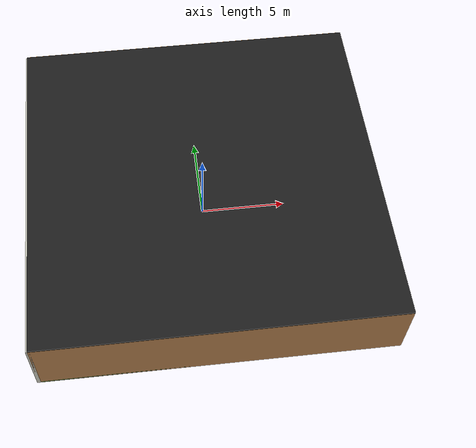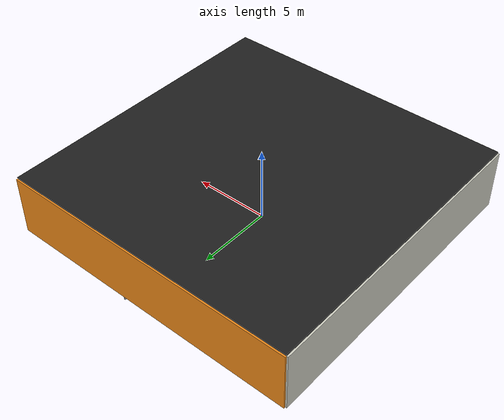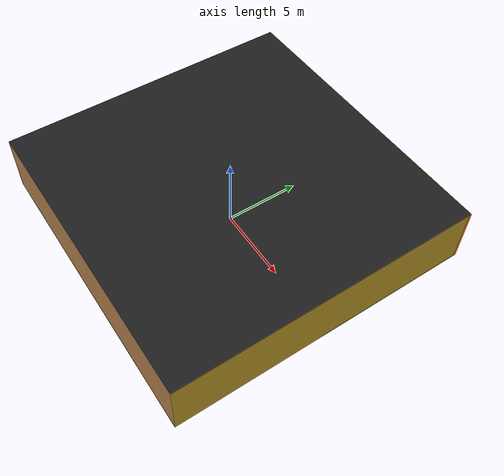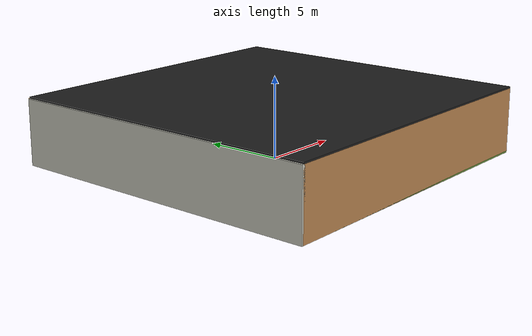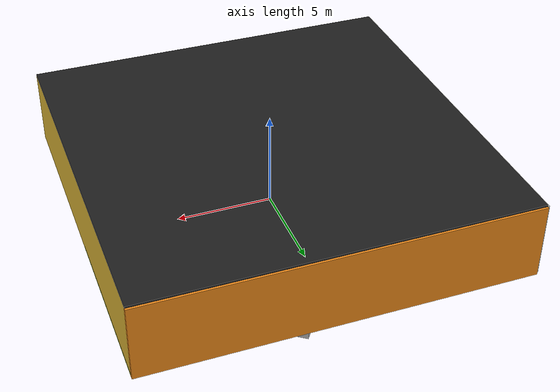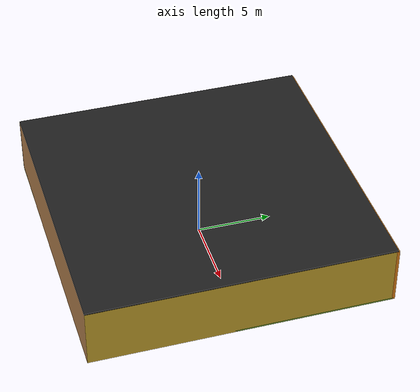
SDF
<sdf version="1.4">
 <world name="default">
  <physics type="ode">
   <max_step_size>0.001</max_step_size>
   <real_time_factor>1</real_time_factor>
   <real_time_update_rate>1000</real_time_update_rate>
   <gravity>0 0 -9.8</gravity>
  </physics>
  <scene><ambient>0.4 0.4 0.4 1</ambient><background>0.7 0.7 0.7 1</background><shadows>1</shadows></scene>
  <model name="Surrounding">
   <static>1</static>
   <link name="Ceiling">
    <collision name="Ceiling_Collision"><geometry><box><size>20 20 0.1</size></box></geometry></collision>
    <visual name="Ceiling_Visual">
     <geometry><box><size>20 20 0.1</size></box></geometry>
     <material>
      <script><uri>file://media/materials/scripts/gazebo.material</uri><name>Gazebo/Black</name></script>
     </material>
    </visual>
    <pose>0 0 4.05 0 0 0</pose>
   </link>
   <link name="Wall_South">
    <collision name="Wall_South_Collision">
     <geometry><box><size>20 0 4</size></box></geometry>
     <pose>0 0 2 0 -0 0</pose>
    </collision>
    <visual name="Wall_South_Visual">
     <pose>0 0 2 0 -0 0</pose>
     <geometry><box><size>20 0 4</size></box></geometry>
     <material>
      <script><uri>file://media/materials/scripts/gazebo.material</uri><name>Gazebo/WoodFloor</name></script>
     </material>
    </visual>
    <velocity_decay><linear>0</linear><angular>0</angular></velocity_decay>
    <pose>0 -10 0 0 -0 0</pose>
   </link>
   <link name="Wall_East">
    <collision name="Wall_21_Collision">
     <geometry><box><size>20 0 4</size></box></geometry>
     <pose>0 0 2 0 -0 0</pose>
    </collision>
    <visual name="Wall_21_Visual">
     <pose>0 0 2 0 -0 0</pose>
     <geometry><box><size>20 0 4</size></box></geometry>
     <material>
      <script><uri>file://media/materials/scripts/gazebo.material</uri><name>Gazebo/Gold</name></script>
     </material>
    </visual>
    <velocity_decay><linear>0</linear><angular>0</angular></velocity_decay>
    <pose>10 0 0 0 -0 1.5708</pose>
   </link>
   <link name="Wall_North">
    <collision name="Wall_22_Collision">
     <geometry><box><size>20 0.2 4</size></box></geometry>
     <pose>0 0 2 0 -0 0</pose>
    </collision>
    <visual name="Wall_22_Visual">
     <pose>0 0 2 0 -0 0</pose>
     <geometry><box><size>20 0.2 4</size></box></geometry>
     <material>
      <script><uri>file://media/materials/scripts/gazebo.material</uri><name>Gazebo/Orange</name></script>
     </material>
    </visual>
    <velocity_decay><linear>0</linear><angular>0</angular></velocity_decay>
    <pose>0 10 0 0 -0 0</pose>
   </link>
   <link name="Wall_West">
    <collision name="Wall_23_Collision">
     <geometry><box><size>20 0.2 4</size></box></geometry>
     <pose>0 0 2 0 -0 0</pose>
    </collision>
    <visual name="Wall_23_Visual">
     <pose>0 0 2 0 -0 0</pose>
     <geometry><box><size>20 0.2 4</size></box></geometry>
     <material>
      <script><uri>file://media/materials/scripts/gazebo.material</uri><name>Gazebo/PaintedWall</name></script>
     </material>
    </visual>
    <velocity_decay><linear>0</linear><angular>0</angular></velocity_decay>
    <pose>-10 0 0 0 0 -1.5708</pose>
   </link>
   <link name="Ground_link">
    <collision name="collision">
     <pose>0 0 .05 0 -0 0</pose>
     <geometry><box><size>20 20 0.1</size></box></geometry>
    </collision>
    <visual name="visual">
     <pose>0 0 .05 0 -0 0</pose>
     <geometry><box><size>20 20 0.1</size></box></geometry>
     <material>
      <script><uri>file://media/materials/scripts/gazebo.material</uri><name>Gazebo/GreenTransparent</name></script>
     </material>
    </visual>
   </link>
   <static>1</static>
  </model>
  <spherical_coordinates>
   <surface_model>EARTH_WGS84</surface_model>
   <latitude_deg>0</latitude_deg>
   <longitude_deg>0</longitude_deg>
   <elevation>0</elevation>
   <heading_deg>0</heading_deg>
  </spherical_coordinates>
  <light name="lightball_0" type="diffuse">
   <diffuse>0.8 0.8 0.8 1</diffuse>
   <specular>0.2 0.2 0.2 1</specular>
   <attenuation>
    <range>100</range>
    <constant>0.7</constant>
    <linear>0.01</linear>
    <quadratic>0.001</quadratic>
   </attenuation>
   <direction>-0.5 0.1 -0.9</direction>
   <pose>-8.69557519599 -8.30675481351 0.826969102713 0 0 0</pose>
  </light>
  <light name="lightball_1" type="diffuse">
   <diffuse>0.8 0.8 0.8 1</diffuse>
   <specular>0.2 0.2 0.2 1</specular>
   <attenuation>
    <range>100</range>
    <constant>0.7</constant>
    <linear>0.01</linear>
    <quadratic>0.001</quadratic>
   </attenuation>
   <direction>-0.5 0.1 -0.9</direction>
   <pose>-7.09582177407 9.50869773743 2.57692466304 0 0 0</pose>
  </light>
  <light name="lightball_2" type="diffuse">
   <diffuse>0.8 0.8 0.8 1</diffuse>
   <specular>0.2 0.2 0.2 1</specular>
   <attenuation>
    <range>100</range>
    <constant>0.7</constant>
    <linear>0.01</linear>
    <quadratic>0.001</quadratic>
   </attenuation>
   <direction>-0.5 0.1 -0.9</direction>
   <pose>-7.76753234685 -0.00719375837442 3.66350282969 0 0 0</pose>
  </light>
  <light name="lightball_3" type="diffuse">
   <diffuse>0.8 0.8 0.8 1</diffuse>
   <specular>0.2 0.2 0.2 1</specular>
   <attenuation>
    <range>100</range>
    <constant>0.7</constant>
    <linear>0.01</linear>
    <quadratic>0.001</quadratic>
   </attenuation>
   <direction>-0.5 0.1 -0.9</direction>
   <pose>-2.11534603589 4.93052954188 1.56869908135 0 0 0</pose>
  </light>
  <light name="lightball_4" type="diffuse">
   <diffuse>0.8 0.8 0.8 1</diffuse>
   <specular>0.2 0.2 0.2 1</specular>
   <attenuation>
    <range>100</range>
    <constant>0.7</constant>
    <linear>0.01</linear>
    <quadratic>0.001</quadratic>
   </attenuation>
   <direction>-0.5 0.1 -0.9</direction>
   <pose>-0.316099302959 2.35741410421 2.83851764948 0 0 0</pose>
  </light>
  <light name="lightball_5" type="diffuse">
   <diffuse>0.8 0.8 0.8 1</diffuse>
   <specular>0.2 0.2 0.2 1</specular>
   <attenuation>
    <range>100</range>
    <constant>0.7</constant>
    <linear>0.01</linear>
    <quadratic>0.001</quadratic>
   </attenuation>
   <direction>-0.5 0.1 -0.9</direction>
   <pose>-9.76453502886 7.66770390923 1.60372308906 0 0 0</pose>
  </light>
  <include><uri>model://table</uri><pose>-7.23284826624 8.09071403616 0 0 0 1.6365741597</pose></include>
  <include>
   <uri>model://robocup_3Dsim_goal</uri>
   <pose>-5.67757539563 -1.82646672174 0 0 0 1.04747606831</pose>
  </include>
  <include>
   <uri>model://textured_shapes</uri>
   <pose>0.976474332815 8.0388489095 0 0 0 2.50364874723</pose>
  </include>
 </world>
</sdf>

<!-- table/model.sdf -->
<sdf version="1.5">
  <model name="table">
    <static>true</static>
    <link name="link">
      <collision name="surface">
        <pose>0 0 1.0 0 0 0</pose>
        <geometry>
          <box>
            <size>1.5 0.8 0.03</size>
          </box>
        </geometry>
        <surface>
          <friction>
            <ode>
              <mu>0.6</mu>
              <mu2>0.6</mu2>
            </ode>
          </friction>
        </surface>
      </collision>
      <visual name="visual1">
        <pose>0 0 1.0 0 0 0</pose>
        <geometry>
          <box>
            <size>1.5 0.8 0.03</size>
          </box>
        </geometry>
        <material>
          <script>
            <uri>model://media/materials/scripts/gazebo.material</uri>
            <name>Gazebo/Wood</name>
          </script>
        </material>
      </visual>
      <collision name="front_left_leg">
        <pose>0.68 0.38 0.5 0 0 0</pose>
        <geometry>
          <cylinder>
            <radius>0.02</radius>
            <length>1.0</length>
          </cylinder>
        </geometry>
      </collision>
      <visual name="front_left_leg">
        <pose>0.68 0.38 0.5 0 0 0</pose>
        <geometry>
          <cylinder>
            <radius>0.02</radius>
            <length>1.0</length>
          </cylinder>
        </geometry>
        <material>
          <script>
            <uri>model://media/materials/scripts/gazebo.material</uri>
            <name>Gazebo/Grey</name>
          </script>
        </material>
      </visual>
      <collision name="front_right_leg">
        <pose>0.68 -0.38 0.5 0 0 0</pose>
        <geometry>
          <cylinder>
            <radius>0.02</radius>
            <length>1.0</length>
          </cylinder>
        </geometry>
      </collision>
      <visual name="front_right_leg">
        <pose>0.68 -0.38 0.5 0 0 0</pose>
        <geometry>
          <cylinder>
            <radius>0.02</radius>
            <length>1.0</length>
          </cylinder>
        </geometry>
        <material>
          <script>
            <uri>model://media/materials/scripts/gazebo.material</uri>
            <name>Gazebo/Grey</name>
          </script>
        </material>
      </visual>
      <collision name="back_right_leg">
        <pose>-0.68 -0.38 0.5 0 0 0</pose>
        <geometry>
          <cylinder>
            <radius>0.02</radius>
            <length>1.0</length>
          </cylinder>
        </geometry>
      </collision>
      <visual name="back_right_leg">
        <pose>-0.68 -0.38 0.5 0 0 0</pose>
        <geometry>
          <cylinder>
            <radius>0.02</radius>
            <length>1.0</length>
          </cylinder>
        </geometry>
        <material>
          <script>
            <uri>model://media/materials/scripts/gazebo.material</uri>
            <name>Gazebo/Grey</name>
          </script>
        </material>
      </visual>
      <collision name="back_left_leg">
        <pose>-0.68 0.38 0.5 0 0 0</pose>
        <geometry>
          <cylinder>
            <radius>0.02</radius>
            <length>1.0</length>
          </cylinder>
        </geometry>
      </collision>
      <visual name="back_left_leg">
        <pose>-0.68 0.38 0.5 0 0 0</pose>
        <geometry>
          <cylinder>
            <radius>0.02</radius>
            <length>1.0</length>
          </cylinder>
        </geometry>
        <material>
          <script>
            <uri>model://media/materials/scripts/gazebo.material</uri>
            <name>Gazebo/Grey</name>
          </script>
        </material>
      </visual>
    </link>
  </model>
</sdf>

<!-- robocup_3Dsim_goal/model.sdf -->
<sdf version="1.5">
  <model name="robocup_3d_goal">
    <static>true</static>
    <link name="left_post">
      <pose>0 1.05 0.45 0 0 0</pose>
      <collision name="collision">
        <geometry>
          <cylinder>
            <radius>0.05</radius>
            <length>0.9</length>
          </cylinder>
        </geometry>
      </collision>
      <visual name="visual">
        <geometry>
          <cylinder>
            <radius>0.05</radius>
            <length>0.9</length>
          </cylinder>
        </geometry>
        <material>
          <script>
            <uri>file://media/materials/scripts/gazebo.material</uri>
            <name>Gazebo/ZincYellow</name>
          </script>
        </material>
      </visual>
    </link>
    <link name="left_support_horiz_lower">
      <pose>0.30 1.05 0.01 0 0 0</pose>
      <collision name="collision">
        <geometry>
          <box>
            <size>0.50 0.02 0.02</size>
          </box>
        </geometry>
      </collision>
      <visual name="visual">
        <geometry>
          <box>
            <size>0.50 0.02 0.02</size>
          </box>
        </geometry>
        <material>
          <script>
            <uri>file://media/materials/scripts/gazebo.material</uri>
            <name>Gazebo/White</name>
          </script>
        </material>
      </visual>
    </link>
    <link name="left_support_horiz_upper">
      <pose>0.30 1.05 0.79 0 0 0</pose>
      <collision name="collision">
        <geometry>
          <box>
            <size>0.50 0.02 0.02</size>
          </box>
        </geometry>
      </collision>
      <visual name="visual">
        <geometry>
          <box>
            <size>0.50 0.02 0.02</size>
          </box>
        </geometry>
        <material>
          <script>
            <uri>file://media/materials/scripts/gazebo.material</uri>
            <name>Gazebo/White</name>
          </script>
        </material>
      </visual>
    </link>
    <link name="left_support_vertical">
      <pose>0.56 1.05 0.4 0 1.5708 0</pose>
      <collision name="collision">
        <geometry>
          <box>
            <size>0.80 0.02 0.02</size>
          </box>
        </geometry>
      </collision>
      <visual name="visual">
        <geometry>
          <box>
            <size>0.80 0.02 0.02</size>
          </box>
        </geometry>
        <material>
          <script>
            <uri>file://media/materials/scripts/gazebo.material</uri>
            <name>Gazebo/White</name>
          </script>
        </material>
      </visual>
    </link>
    <link name="right_support_horiz_lower">
      <pose>0.30 -1.05 0.01 0 0 0</pose>
      <collision name="collision">
        <geometry>
          <box>
            <size>0.50 0.02 0.02</size>
          </box>
        </geometry>
      </collision>
      <visual name="visual">
        <geometry>
          <box>
            <size>0.50 0.02 0.02</size>
          </box>
        </geometry>
        <material>
          <script>
            <uri>file://media/materials/scripts/gazebo.material</uri>
            <name>Gazebo/White</name>
          </script>
        </material>
      </visual>
    </link>
    <link name="right_support_horiz_upper">
      <pose>0.30 -1.05 0.79 0 0 0</pose>
      <collision name="collision">
        <geometry>
          <box>
            <size>0.50 0.02 0.02</size>
          </box>
        </geometry>
      </collision>
      <visual name="visual">
        <geometry>
          <box>
            <size>0.50 0.02 0.02</size>
          </box>
        </geometry>
        <material>
          <script>
            <uri>file://media/materials/scripts/gazebo.material</uri>
            <name>Gazebo/White</name>
          </script>
        </material>
      </visual>
    </link>
    <link name="right_support_vertical">
      <pose>0.56 -1.05 0.4 0 1.5708 0</pose>
      <collision name="collision">
        <geometry>
          <box>
            <size>0.80 0.02 0.02</size>
          </box>
        </geometry>
      </collision>
      <visual name="visual">
        <geometry>
          <box>
            <size>0.80 0.02 0.02</size>
          </box>
        </geometry>
        <material>
          <script>
            <uri>file://media/materials/scripts/gazebo.material</uri>
            <name>Gazebo/White</name>
          </script>
        </material>
      </visual>
    </link>
    <link name="center_support_horiz_lower">
      <pose>0.56 0 0.01 0 1.5708 0</pose>
      <collision name="collision">
        <geometry>
          <box>
            <size>0.02 2.08 0.02</size>
          </box>
        </geometry>
      </collision>
      <visual name="visual">
        <geometry>
          <box>
            <size>0.02 2.08 0.02</size>
          </box>
        </geometry>
        <material>
          <script>
            <uri>file://media/materials/scripts/gazebo.material</uri>
            <name>Gazebo/White</name>
          </script>
        </material>
      </visual>
    </link>
    <link name="center_support_horiz_upper">
      <pose>0.56 0 0.79 0 1.5708 0</pose>
      <collision name="collision">
        <geometry>
          <box>
            <size>0.02 2.08 0.02</size>
          </box>
        </geometry>
      </collision>
      <visual name="visual">
        <geometry>
          <box>
            <size>0.02 2.08 0.02</size>
          </box>
        </geometry>
        <material>
          <script>
            <uri>file://media/materials/scripts/gazebo.material</uri>
            <name>Gazebo/White</name>
          </script>
        </material>
      </visual>
    </link>
    <link name="right_post">
      <pose>0 -1.05 0.45 0 0 0</pose>
      <collision name="collision">
        <geometry>
          <cylinder>
            <radius>0.05</radius>
            <length>0.9</length>
          </cylinder>
        </geometry>
      </collision>
      <visual name="visual">
        <geometry>
          <cylinder>
            <radius>0.05</radius>
            <length>0.9</length>
          </cylinder>
        </geometry>
        <material>
          <script>
            <uri>file://media/materials/scripts/gazebo.material</uri>
            <name>Gazebo/ZincYellow</name>
          </script>
        </material>
      </visual>
    </link>
    <link name="crossbar">
      <pose>0 0 0.85 1.57 1.57 0</pose>
      <collision name="collision">
        <geometry>
          <cylinder>
            <radius>0.05</radius>
            <length>2.0</length>
          </cylinder>
        </geometry>
      </collision>
      <visual name="visual">
        <geometry>
          <cylinder>
            <radius>0.05</radius>
            <length>2.0</length>
          </cylinder>
        </geometry>
        <material>
          <script>
            <uri>file://media/materials/scripts/gazebo.material</uri>
            <name>Gazebo/ZincYellow</name>
          </script>
        </material>
      </visual>
    </link>
    <link name="center_net">
      <pose>0.56 0 0.40 0 0 0</pose>
      <collision name="collision">
        <geometry>
          <box>
            <size>0.01 2.1 0.80</size>
          </box>
        </geometry>
      </collision>
      <visual name="visual">
        <geometry>
          <box>
            <size>0.01 2.1 0.80</size>
          </box>
        </geometry>
        <material>
          <script>
            <uri>model://../model_source/models/robocup09_spl_field/materials/scripts/</uri>
            <uri>model://../model_source/models/robocup09_spl_field/materials/textures/</uri>
            <name>RoboCup/Net</name>
          </script>
        </material>
      </visual>
    </link>
    <link name="left_net">
      <pose>0.30 1.05 0.40 0 0 0</pose>
      <collision name="collision">
        <geometry>
          <box>
            <size>0.50 0.01 0.76</size>
          </box>
        </geometry>
      </collision>
      <visual name="visual">
        <geometry>
          <box>
            <size>0.50 0.01 0.76</size>
          </box>
        </geometry>
        <material>
          <script>
            <uri>model://../model_source/models/robocup09_spl_field/materials/scripts/</uri>
            <uri>model://../model_source/models/robocup09_spl_field/materials/textures/</uri>
            <name>RoboCup/Net</name>
          </script>
        </material>
      </visual>
    </link>
    <link name="right_net">
      <pose>0.30 -1.05 0.40 0 0 0</pose>
      <collision name="collision">
        <geometry>
          <box>
            <size>0.50 0.01 0.76</size>
          </box>
        </geometry>
      </collision>
      <visual name="visual">
        <geometry>
          <box>
            <size>0.50 0.01 0.76</size>
          </box>
        </geometry>
        <material>
          <script>
            <uri>model://../model_source/models/robocup09_spl_field/materials/scripts/</uri>
            <uri>model://../model_source/models/robocup09_spl_field/materials/textures/</uri>
            <name>RoboCup/Net</name>
          </script>
        </material>
      </visual>
    </link>
  </model>
</sdf>

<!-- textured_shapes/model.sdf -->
<sdf version="1.6">
  <model name="textured_shapes">
    <pose>0 0 0.5 0 0 0</pose>
    <link name="box">
      <pose>0 -1.5 0 0 0 0</pose>
      <collision name="collision">
        <geometry>
          <box>
            <size>1 1 1</size>
          </box>
        </geometry>
      </collision>
      <visual name="visual">
        <geometry>
          <box>
            <size>1 1 1</size>
          </box>
        </geometry>
        <material>
          <script>
            <uri>model://../model_source/models/textured_shapes/materials/scripts</uri>
            <uri>model://../model_source/models/textured_shapes/materials/textures</uri>
            <name>TexturedShape/Squares</name>
          </script>
        </material>
      </visual>
    </link>
    <link name="sphere">
      <collision name="collision">
        <geometry>
          <sphere>
            <radius>0.5</radius>
          </sphere>
        </geometry>
      </collision>
      <visual name="visual">
        <geometry>
          <sphere>
            <radius>0.5</radius>
          </sphere>
        </geometry>
        <material>
          <script>
            <uri>model://../model_source/models/textured_shapes/materials/scripts</uri>
            <uri>model://../model_source/models/textured_shapes/materials/textures</uri>
            <name>TexturedShape/Squares</name>
          </script>
        </material>
      </visual>
    </link>
    <link name="cylinder">
      <pose>0 1.5 0 0 0 0</pose>
      <collision name="collision">
        <geometry>
          <cylinder>
            <radius>0.5</radius>
            <length>1</length>
          </cylinder>
        </geometry>
      </collision>
      <visual name="visual">
        <geometry>
          <cylinder>
            <radius>0.5</radius>
            <length>1</length>
          </cylinder>
        </geometry>
        <material>
          <script>
            <uri>model://../model_source/models/textured_shapes/materials/scripts</uri>
            <uri>model://../model_source/models/textured_shapes/materials/textures</uri>
            <name>TexturedShape/Squares</name>
          </script>
        </material>
      </visual>
    </link>
  </model>
</sdf>
